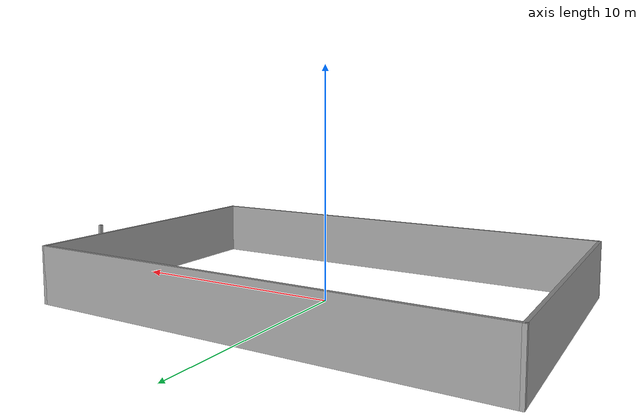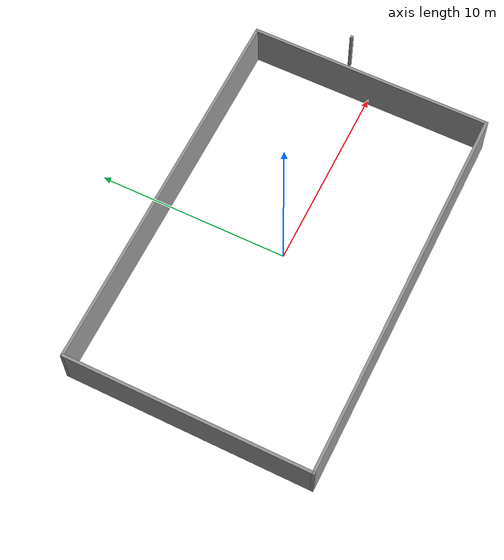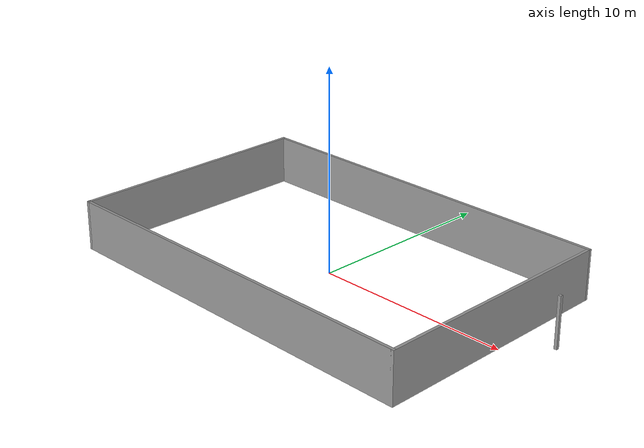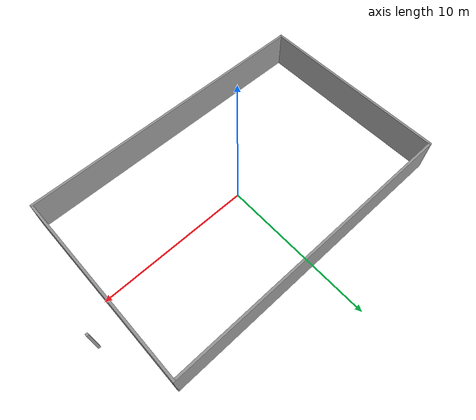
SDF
<?xml version='1.0'?>
<sdf version='1.7'>
  <model name='basic_room'>
    <pose>0.819988 -0.012867 0 0 -0 0</pose>
    <link name='Wall_1'>
      <collision name='Wall_1_Collision'>
        <geometry>
          <box>
            <size>0.15 0.15 2.5</size>
          </box>
        </geometry>
        <pose>0 0 1.25 0 -0 0</pose>
      </collision>
      <visual name='Wall_1_Visual'>
        <pose>0 0 1.25 0 -0 0</pose>
        <geometry>
          <box>
            <size>0.15 0.15 2.5</size>
          </box>
        </geometry>
        <material>
          <script>
            <uri>file://media/materials/scripts/gazebo.material</uri>
            <name>Gazebo/Grey</name>
          </script>
          <ambient>1 1 1 1</ambient>
        </material>
        <meta>
          <layer>0</layer>
        </meta>
      </visual>
      <pose>10.7987 1.79242 0 0 -0 0</pose>
    </link>
    <link name='Wall_10'>
      <collision name='Wall_10_Collision'>
        <geometry>
          <box>
            <size>12.75 0.15 2.5</size>
          </box>
        </geometry>
        <pose>0 0 1.25 0 -0 0</pose>
      </collision>
      <visual name='Wall_10_Visual'>
        <pose>0 0 1.25 0 -0 0</pose>
        <geometry>
          <box>
            <size>12.75 0.15 2.5</size>
          </box>
        </geometry>
        <material>
          <script>
            <uri>file://media/materials/scripts/gazebo.material</uri>
            <name>Gazebo/Grey</name>
          </script>
          <ambient>1 1 1 1</ambient>
        </material>
        <meta>
          <layer>0</layer>
        </meta>
      </visual>
      <pose>-10.7987 0 0 0 -0 -1.5708</pose>
    </link>
    <link name='Wall_12'>
      <collision name='Wall_12_Collision'>
        <geometry>
          <box>
            <size>20 0.15 2.5</size>
          </box>
        </geometry>
        <pose>0 0 1.25 0 -0 0</pose>
      </collision>
      <visual name='Wall_12_Visual'>
        <pose>0 0 1.25 0 -0 0</pose>
        <geometry>
          <box>
            <size>20 0.15 2.5</size>
          </box>
        </geometry>
        <material>
          <script>
            <uri>file://media/materials/scripts/gazebo.material</uri>
            <name>Gazebo/Grey</name>
          </script>
          <ambient>1 1 1 1</ambient>
        </material>
        <meta>
          <layer>0</layer>
        </meta>
      </visual>
      <pose>-0.873738 -6.3 0 0 -0 0</pose>
    </link>
    <link name='Wall_13'>
      <collision name='Wall_13_Collision'>
        <geometry>
          <box>
            <size>12.75 0.15 2.5</size>
          </box>
        </geometry>
        <pose>0 0 1.25 0 -0 0</pose>
      </collision>
      <visual name='Wall_13_Visual'>
        <pose>0 0 1.25 0 -0 0</pose>
        <geometry>
          <box>
            <size>12.75 0.15 2.5</size>
          </box>
        </geometry>
        <material>
          <script>
            <uri>file://media/materials/scripts/gazebo.material</uri>
            <name>Gazebo/Grey</name>
          </script>
          <ambient>1 1 1 1</ambient>
        </material>
        <meta>
          <layer>0</layer>
        </meta>
      </visual>
      <pose>9.05126 0 0 0 -0 1.5708</pose>
    </link>
    <link name='Wall_6'>
      <collision name='Wall_6_Collision'>
        <geometry>
          <box>
            <size>20 0.15 2.5</size>
          </box>
        </geometry>
        <pose>0 0 1.25 0 -0 0</pose>
      </collision>
      <visual name='Wall_6_Visual'>
        <pose>0 0 1.25 0 -0 0</pose>
        <geometry>
          <box>
            <size>20 0.15 2.5</size>
          </box>
        </geometry>
        <material>
          <script>
            <uri>file://media/materials/scripts/gazebo.material</uri>
            <name>Gazebo/Grey</name>
          </script>
          <ambient>1 1 1 1</ambient>
        </material>
        <meta>
          <layer>0</layer>
        </meta>
      </visual>
      <pose>-0.873738 6.3 0 0 -0 0</pose>
    </link>
    <static>1</static>
  </model>
</sdf>
